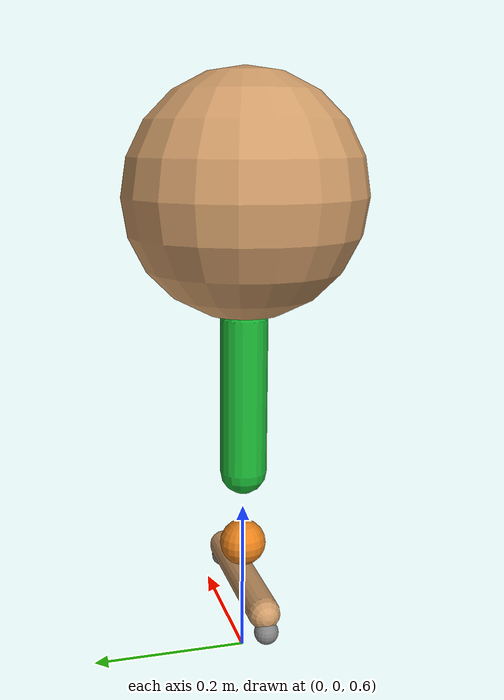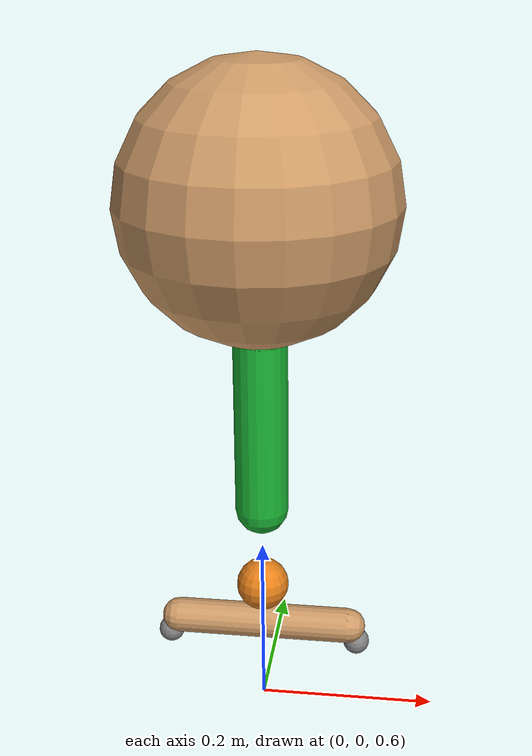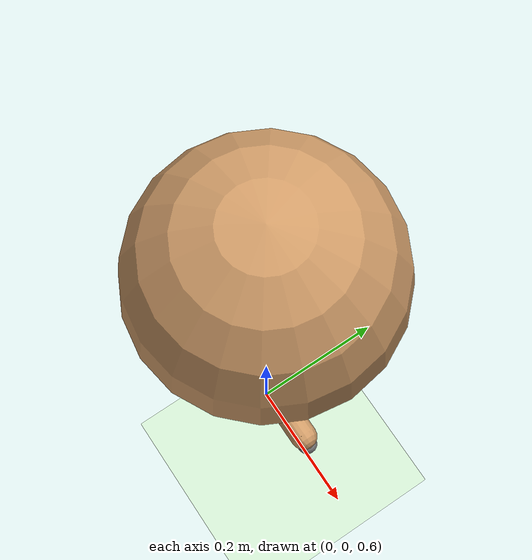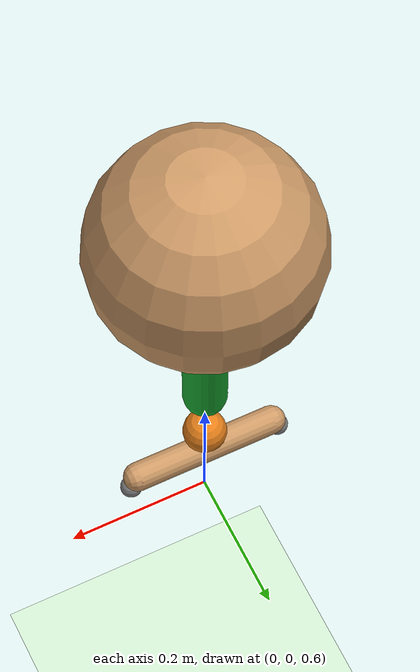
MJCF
<mujoco model="SLIP">
  <compiler inertiafromgeom="false" angle="degree" />

  <default>
    <joint limited='true' damping='1' armature='1' />
    <geom contype='7' conaffinity='7' condim='1' rgba='0.8 0.6 .4 1' margin="0.001" solref=".005 1" solimp=".99 .98 .01" material="geom" />
    <motor ctrlrange='-.4 .4' ctrllimited='true' />
  </default>

  <option timestep="0.001" integrator="Euler" gravity="0 0 -9.806"/>
  <asset>
    <texture type="skybox" builtin="gradient" width="100" height="100" rgb1="1 1 1" rgb2="0 0 0" />
    <texture name="texgeom" type="cube" builtin="flat" mark="cross" width="127" height="1278" rgb1="0.8 0.6 0.4" rgb2="0.8 0.6 0.4" markrgb="1 1 1" random="0.01" />
    <texture name="texplane" type="2d" builtin="checker" rgb1="0 0 0" rgb2="0.8 0.8 0.8" width="100" height="100" />
    <material name='MatPlane' texture="texplane" shininess="1" texrepeat="60 60" specular="1"  reflectance="0.5" />
    <material name='geom' texture="texgeom" texuniform="true" />
  </asset>

  <worldbody>
    <light directional="true" cutoff="100" exponent="1" diffuse="1 1 1" specular=".1 .1 .1" pos="0 0 1.3" dir="-0 0 -1.3" />
    <geom name='floor' contype='7' conaffinity='7' material="MatPlane" pos='0 0 0' size='40 40 40' type='plane' rgba='0.8 0.9 0.8 1' condim='3' friction="2.0" />

    <body name="torso" pos="0 0 1.2">
      <joint name='rootx' type='slide' axis='-1 0 0' pos='0 0 0' limited='false' damping='0' armature='0' stiffness='0' />
      <joint name='rootz' type='slide' axis='0 0 1' pos='0 0 0' limited='false' damping='0' armature='0' stiffness='0' ref='1.2'/>
      <geom name="torso_geom" type="sphere" size="0.15" friction="0.9"/>
      <inertial pos='0 0 0' mass='10' diaginertia = '0.2 0.2 0.2'/>

      <body name="leg" pos="0 0 -0.15">
        <joint name='leg_tau' type = 'hinge' axis='0 1 0' pos='0 0 0.15' limited='true' range='-100 100' damping='0' armature='0' stiffness='0' />
        <inertial pos='0 0 -0.1' mass='0.5' diaginertia = '0.01 0.01 0.01'/>
	<joint name='leg_motor' type='slide' axis='0 0 -1' pos='0 0 0' limited='true' range='0.45 0.6' ref='0' damping='10' armature='0' stiffness='0'/>
	<!--I think the range is calculated with respect to parent body, so [-0.4 0] means 0.4 downward from the parent to the parent at 0, if z axis set to -1  -->

	<geom name="leg_geom"  type="capsule" contype='2' conaffinity='2' fromto="0 0 0 0 0 -0.2" size="0.03" friction="0.9" rgba="0.1 0.7 0.2 1" />

        <body name="toe" pos="0 0 -0.3">
	    	<joint name='spring' type='slide' axis='0 0 1' pos='0 0 0' limited='true' range='-0.3 0.3' damping='100' armature='0' stiffness='25000'/>
	        <geom type='sphere' size='0.03' pos='0 0 0' friction="0.1" rgba ='0.9 0.5 0.1 1'/>
		<inertial pos='0 0 0' mass='0.15' diaginertia = '0.01 0.01 0.01'/>

		<body name="foot" pos="0 0 -0.05">
            		<joint name="foot_joint" type="hinge" pos="0 0 0" axis="0 -1 0" range="-20 20" armature='0' stiffness='0' damping='1'/>
            		<geom name="foot_geom" type="capsule" fromto="-0.1 0 0 0.1 0 0" size="0.02" friction="2.0" condim='4'/>
			<site name="foot_heel" type="sphere" pos="-0.11 0 -0.02" size="0.015"/>
			<site name="foot_toe" type="sphere" pos="0.11 0 -0.02" size="0.015"/>
			<inertial pos='0 0 0' mass='0.15' diaginertia = '0.2 0.2 0.2'/>
          	</body>

        </body>
      </body>
    </body>
  </worldbody>

  <actuator>
    <motor joint="leg_tau" ctrlrange="-1500.0 1500.0" ctrllimited="true" />
    <motor joint="leg_motor" ctrlrange="-2000.0 2000.0" ctrllimited="true" />
    <motor joint="foot_joint" ctrlrange="-200.0 200.0" ctrllimited="true" />
  </actuator>
</mujoco>
